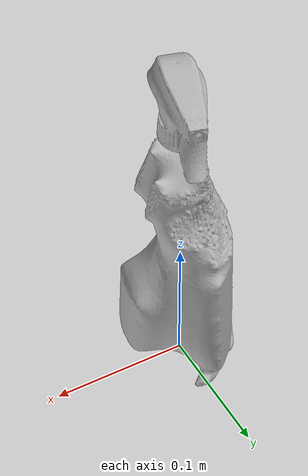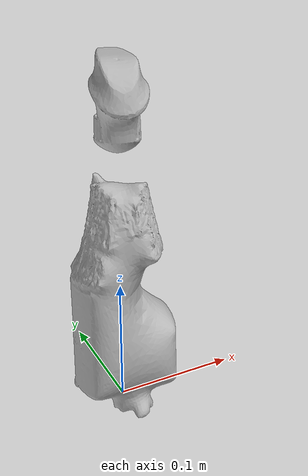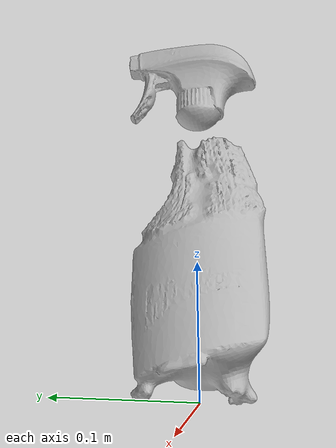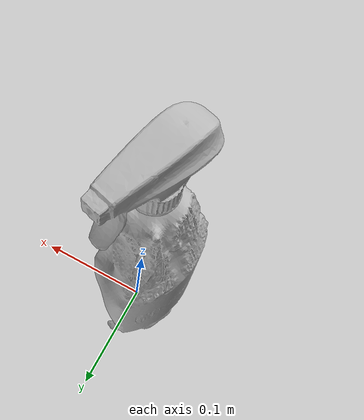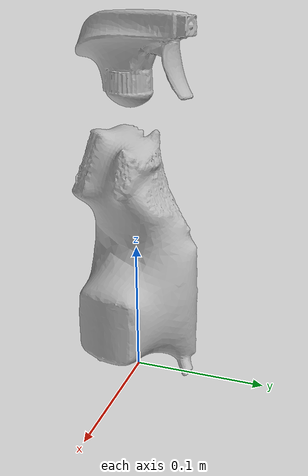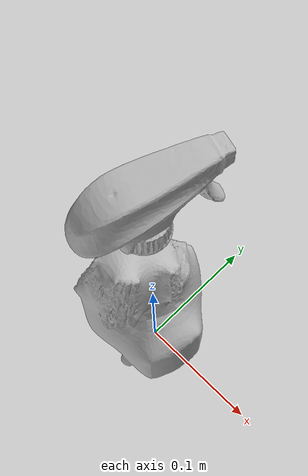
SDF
<?xml version="1.0"?>
<sdf version="1.6">
  <model name="windex_bottle">
    <link name="link">
      <inertial>
        <mass>1.022</mass>
      </inertial>
      <collision name="collision">
        <pose>0 0 0.135 0 0 0</pose>
        <geometry>
          <box>
            <size>0.080 0.105 0.270</size>
          </box>
        </geometry>
      </collision>
      <visual name="visual">
        <!-- DAE 原点偏在瓶身一侧；将网格中心对齐简化 box collision。 -->
        <pose>-0.018286525 -0.011927990 0.000750500 0 0 0</pose>
        <geometry>
          <mesh>
            <uri>model://windex_bottle/meshes/textured.dae</uri>
          </mesh>
        </geometry>
      </visual>
    </link>
  </model>
</sdf>
